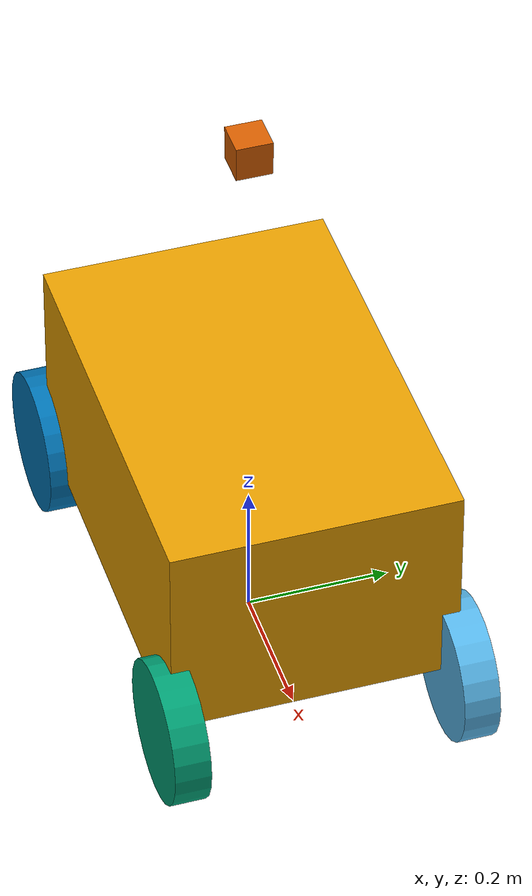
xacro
<?xml version="1.0"?>
<robot name="robot_with_scanner" xmlns:xacro="http://www.ros.org/wiki/xacro">

  <!-- PARAMETERS -->
  <xacro:property name="wheel_radius" value="0.1"/>
  <xacro:property name="wheel_width"  value="0.05"/>
  <xacro:property name="half_width"   value="0.20"/>
  <xacro:property name="wheelbase"    value="0.30"/>

  <!-- ================= BASE ================= -->
  <link name="base_link">
    <inertial>
      <mass value="10.0"/>
      <origin xyz="0 0 0" rpy="0 0 0"/>
      <inertia ixx="0.4" iyy="0.4" izz="0.4" ixy="0" ixz="0" iyz="0"/>
    </inertial>

    <visual>
      <origin xyz="0 0 ${wheel_radius+0.15}" />
      <geometry><box size="0.6 0.4 0.3"/></geometry>
    </visual>

    <collision>
      <origin xyz="0 0 ${wheel_radius+0.15}" />
      <geometry><box size="0.6 0.4 0.3"/></geometry>
    </collision>
  </link>

  <!-- MACRO FOR WHEEL -->
  <xacro:macro name="wheel_link" params="name">
    <link name="${name}">
      <inertial>
        <mass value="1.0"/>
        <origin xyz="0 0 0" rpy="0 0 0"/>
        <inertia ixx="0.01" iyy="0.01" izz="0.01" ixy="0" ixz="0" iyz="0"/>
      </inertial>

      <visual>
        <origin xyz="0 0 0" rpy="1.5708 0 0"/>
        <geometry><cylinder radius="${wheel_radius}" length="${wheel_width}"/></geometry>
      </visual>

      <collision>
        <origin xyz="0 0 0" rpy="1.5708 0 0"/>
        <geometry><cylinder radius="${wheel_radius}" length="${wheel_width}"/></geometry>
      </collision>
    </link>
  </xacro:macro>

  <!-- WHEELS -->
  <xacro:wheel_link name="front_left_wheel"/>
  <xacro:wheel_link name="front_right_wheel"/>
  <xacro:wheel_link name="rear_left_wheel"/>
  <xacro:wheel_link name="rear_right_wheel"/>

  <!-- JOINTS -->
  <joint name="front_left_joint" type="continuous">
    <parent link="base_link"/>
    <child  link="front_left_wheel"/>
    <origin xyz="${wheelbase} ${half_width} ${wheel_radius}"/>
    <axis xyz="0 1 0"/>
  </joint>

  <joint name="front_right_joint" type="continuous">
    <parent link="base_link"/>
    <child  link="front_right_wheel"/>
    <origin xyz="${wheelbase} -${half_width} ${wheel_radius}"/>
    <axis xyz="0 1 0"/>
  </joint>

  <joint name="rear_left_joint" type="continuous">
    <parent link="base_link"/>
    <child  link="rear_left_wheel"/>
    <origin xyz="-${wheelbase} ${half_width} ${wheel_radius}"/>
    <axis xyz="0 1 0"/>
  </joint>

  <joint name="rear_right_joint" type="continuous">
    <parent link="base_link"/>
    <child  link="rear_right_wheel"/>
    <origin xyz="-${wheelbase} -${half_width} ${wheel_radius}"/>
    <axis xyz="0 1 0"/>
  </joint>

  <!-- DIFF DRIVE -->
  <gazebo>
    <plugin name="diff_drive" filename="libgazebo_ros_diff_drive.so">
      <leftJoint>rear_left_joint</leftJoint>
      <rightJoint>rear_right_joint</rightJoint>
      <wheelSeparation>${2*half_width}</wheelSeparation>
      <wheelDiameter>${2*wheel_radius}</wheelDiameter>
      <robotBaseFrame>base_link</robotBaseFrame>
      <commandTopic>cmd_vel</commandTopic>
      <odometryTopic>odom</odometryTopic>
      <publishTf>true</publishTf>
    </plugin>
  </gazebo>

  <!-- SCANNER -->
<link name="vertical_profiler_link">
  <inertial>
    <mass value="0.2"/>
    <origin xyz="0 0 0"/>
    <inertia
      ixx="0.001" ixy="0.0" ixz="0.0"
      iyy="0.001" iyz="0.0"
      izz="0.001"/>
  </inertial>

  <visual>
    <geometry><box size="0.05 0.05 0.05"/></geometry>
  </visual>

  <collision>
    <geometry><box size="0.05 0.05 0.05"/></geometry>
  </collision>
</link>

<joint name="scanner_joint" type="fixed">
  <parent link="base_link"/>
  <child  link="vertical_profiler_link"/>
  <origin xyz="0 0 0.8" rpy="1.5708 0 1.5708"/>
</joint>

<gazebo reference="vertical_profiler_link">
  <sensor type="ray" name="vertical_laser">
    <always_on>true</always_on>
    <update_rate>30</update_rate>
    <visualize>true</visualize>

    <ray>
      <scan>
        <!-- The vertical scan is achieved by rotating the link. -->
        <horizontal>
          <samples>300</samples>
          <resolution>1</resolution>
          <min_angle>-0.25</min_angle>
          <max_angle>0.25</max_angle>
        </horizontal>
      </scan>

      <range>
        <min>0.1</min>
        <max>6.0</max>
        <resolution>0.001</resolution>
      </range>
    </ray>

    <plugin name="gazebo_ros_vertical_scanner" filename="libgazebo_ros_laser.so">
      <topicName>/scan_cloud</topicName>
      <frameName>vertical_profiler_link</frameName>
    </plugin>
  </sensor>
</gazebo>

</robot>
